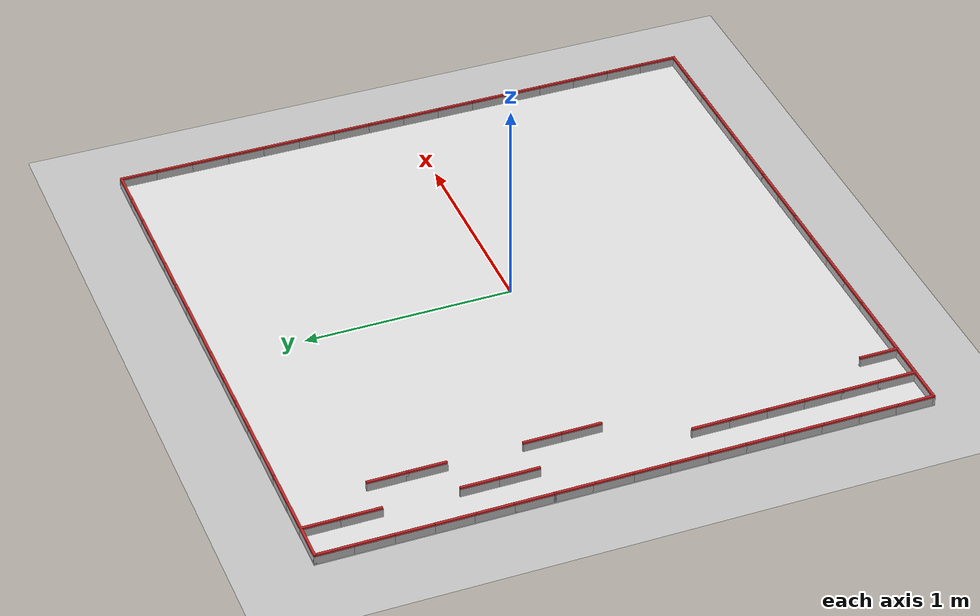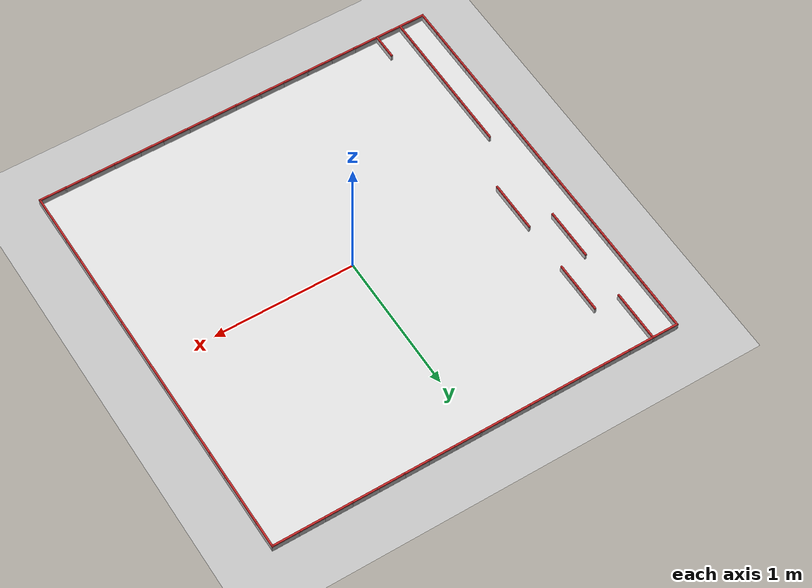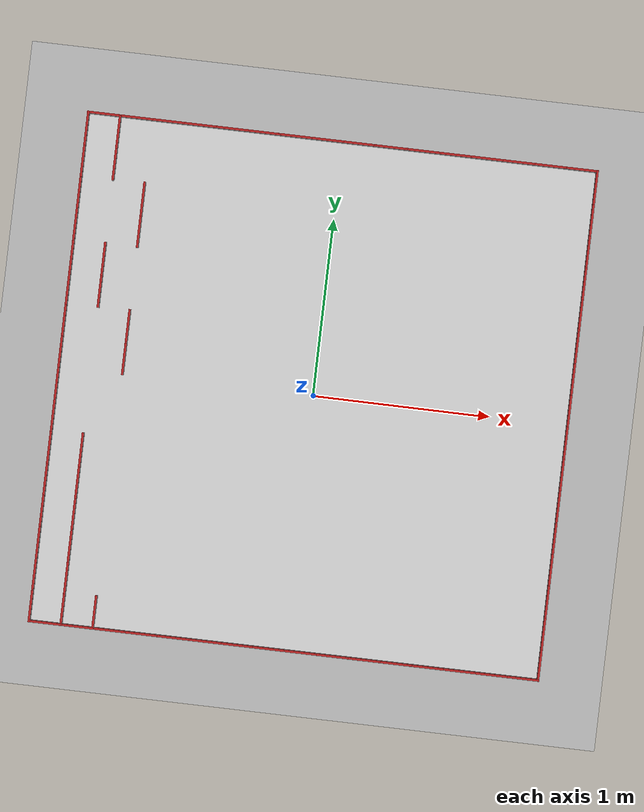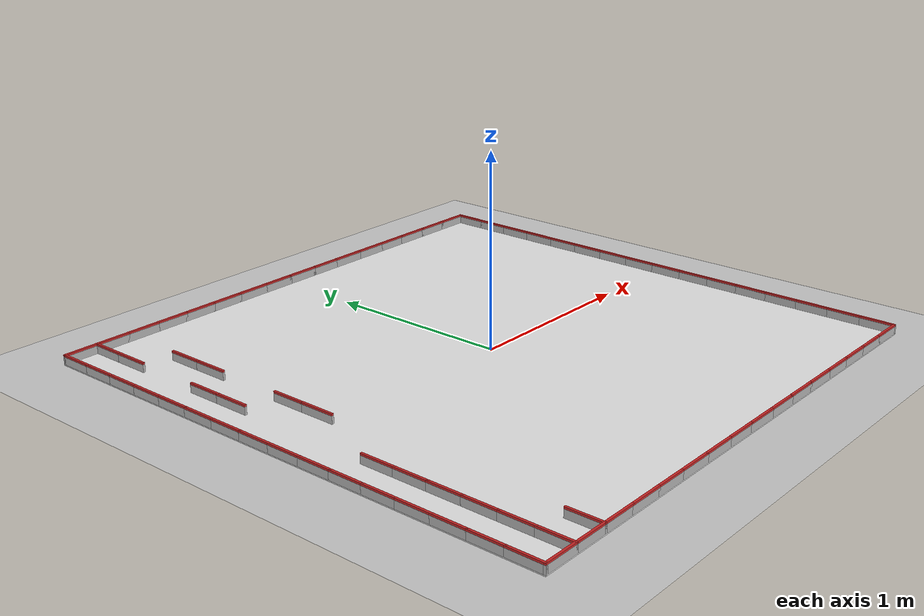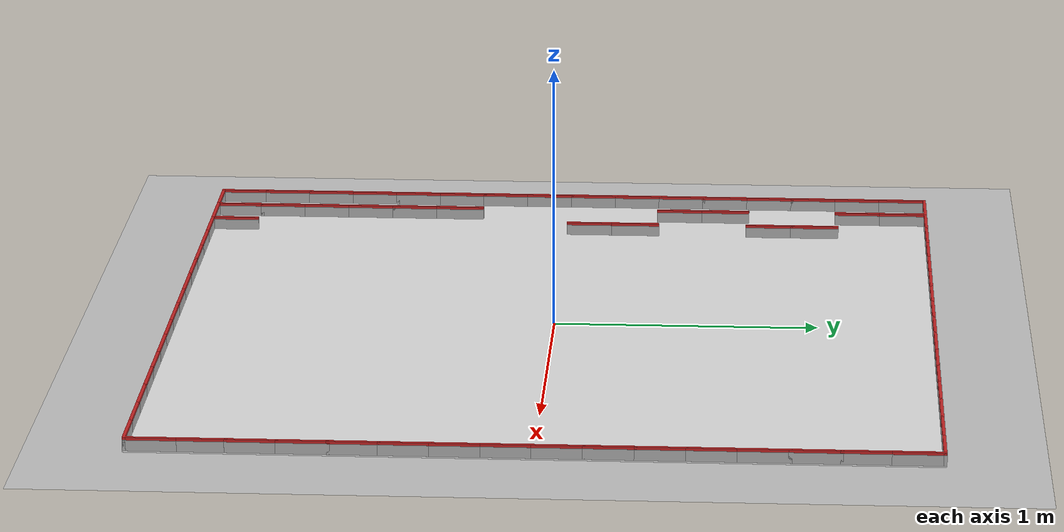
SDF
<sdf version="1.7">
 <world name="default">
  <model name="ground_plane">
   <static>1</static>
   <link name="link">
    <collision name="collision">
     <geometry><plane><normal>0 0 1</normal><size>100 100</size></plane></geometry>
     <surface><friction><ode><mu>100</mu><mu2>50</mu2></ode></friction></surface>
    </collision>
    <visual name="visual">
     <cast_shadows>0</cast_shadows>
     <geometry><plane><normal>0 0 1</normal><size>100 100</size></plane></geometry>
     <material>
      <script><uri>file://media/materials/scripts/gazebo.material</uri><name>Gazebo/Grey</name></script>
     </material>
    </visual>
   </link>
  </model>
  <light name="sun" type="directional">
   <pose>0 0 10 0 -0 0</pose>
   <diffuse>0.8 0.8 0.8 1</diffuse>
   <specular>0.2 0.2 0.2 1</specular>
   <attenuation>
    <range>1000</range>
    <constant>0.9</constant>
    <linear>0.01</linear>
    <quadratic>0.001</quadratic>
   </attenuation>
   <direction>-0.5 0.1 -0.9</direction>
   <spot><inner_angle>0</inner_angle><outer_angle>0</outer_angle><falloff>0</falloff></spot>
  </light>
  <physics type="ode">
   <real_time_update_rate>1000</real_time_update_rate>
   <max_step_size>0.001</max_step_size>
   <real_time_factor>1</real_time_factor>
  </physics>
  <gravity>0 0 -9.8</gravity>
  <magnetic_field>6e-06 2.3e-05 -4.2e-05</magnetic_field>
  <atmosphere type="adiabatic"/>
  <scene><ambient>0.4 0.4 0.4 1</ambient><background>0.7 0.7 0.7 1</background><shadows>1</shadows></scene>
  <spherical_coordinates>
   <surface_model>EARTH_WGS84</surface_model>
   <latitude_deg>0</latitude_deg>
   <longitude_deg>0</longitude_deg>
   <elevation>0</elevation>
   <heading_deg>0</heading_deg>
  </spherical_coordinates>
  <model name="my_maze">
   <link name="base">
    <inertial>
     <mass>1</mass>
     <inertia>
      <ixx>1.39394</ixx>
      <ixy>0</ixy>
      <ixz>0</ixz>
      <iyy>0.696972</iyy>
      <iyz>0</iyz>
      <izz>0.696973</izz>
     </inertia>
     <pose>0 0 0.05 0 -0 0</pose>
    </inertial>
    <visual name="visual">
     <pose>0 0 0.0025 0 -0 0</pose>
     <geometry><box><size>2.892 2.892 0.005</size></box></geometry>
     <material>
      <script><uri>file://media/materials/scripts/gazebo.material</uri><name>Gazebo/White</name></script>
     </material>
    </visual>
    <collision name="collision">
     <pose>0 0 0.0025 0 -0 0</pose>
     <geometry><box><size>2.892 2.892 0.005</size></box></geometry>
     <surface><friction><ode><mu>1000</mu><mu2>1000</mu2></ode></friction></surface>
    </collision>
    <visual name="paint_v_0_0_W">
     <pose>-1.44 1.35 0.05 0 -0 1.5708</pose>
     <geometry><box><size>0.192 0.012 0.01</size></box></geometry>
     <material>
      <script><name>Gazebo/Red</name><uri>file://media/materials/scripts/gazebo.material</uri></script>
     </material>
    </visual>
    <visual name="v_0_0_W">
     <pose>-1.44 1.35 0.025 0 -0 1.5708</pose>
     <geometry><box><size>0.192 0.012 0.04</size></box></geometry>
    </visual>
    <collision name="p_0_0_W">
     <pose>-1.44 1.35 0.03 0 -0 1.5708</pose>
     <geometry><box><size>0.192 0.012 0.05</size></box></geometry>
    </collision>
    <visual name="paint_v_0_1_W">
     <pose>-1.26 1.35 0.05 0 -0 1.5708</pose>
     <geometry><box><size>0.192 0.012 0.01</size></box></geometry>
     <material>
      <script><name>Gazebo/Red</name><uri>file://media/materials/scripts/gazebo.material</uri></script>
     </material>
    </visual>
    <visual name="v_0_1_W">
     <pose>-1.26 1.35 0.025 0 -0 1.5708</pose>
     <geometry><box><size>0.192 0.012 0.04</size></box></geometry>
    </visual>
    <collision name="p_0_1_W">
     <pose>-1.26 1.35 0.03 0 -0 1.5708</pose>
     <geometry><box><size>0.192 0.012 0.05</size></box></geometry>
    </collision>
    <visual name="paint_v_1_0_W">
     <pose>-1.44 1.17 0.05 0 -0 1.5708</pose>
     <geometry><box><size>0.192 0.012 0.01</size></box></geometry>
     <material>
      <script><name>Gazebo/Red</name><uri>file://media/materials/scripts/gazebo.material</uri></script>
     </material>
    </visual>
    <visual name="v_1_0_W">
     <pose>-1.44 1.17 0.025 0 -0 1.5708</pose>
     <geometry><box><size>0.192 0.012 0.04</size></box></geometry>
    </visual>
    <collision name="p_1_0_W">
     <pose>-1.44 1.17 0.03 0 -0 1.5708</pose>
     <geometry><box><size>0.192 0.012 0.05</size></box></geometry>
    </collision>
    <visual name="paint_v_1_1_W">
     <pose>-1.26 1.17 0.05 0 -0 1.5708</pose>
     <geometry><box><size>0.192 0.012 0.01</size></box></geometry>
     <material>
      <script><name>Gazebo/Red</name><uri>file://media/materials/scripts/gazebo.material</uri></script>
     </material>
    </visual>
    <visual name="v_1_1_W">
     <pose>-1.26 1.17 0.025 0 -0 1.5708</pose>
     <geometry><box><size>0.192 0.012 0.04</size></box></geometry>
    </visual>
    <collision name="p_1_1_W">
     <pose>-1.26 1.17 0.03 0 -0 1.5708</pose>
     <geometry><box><size>0.192 0.012 0.05</size></box></geometry>
    </collision>
    <visual name="paint_v_2_0_W">
     <pose>-1.44 0.99 0.05 0 -0 1.5708</pose>
     <geometry><box><size>0.192 0.012 0.01</size></box></geometry>
     <material>
      <script><name>Gazebo/Red</name><uri>file://media/materials/scripts/gazebo.material</uri></script>
     </material>
    </visual>
    <visual name="v_2_0_W">
     <pose>-1.44 0.99 0.025 0 -0 1.5708</pose>
     <geometry><box><size>0.192 0.012 0.04</size></box></geometry>
    </visual>
    <collision name="p_2_0_W">
     <pose>-1.44 0.99 0.03 0 -0 1.5708</pose>
     <geometry><box><size>0.192 0.012 0.05</size></box></geometry>
    </collision>
    <visual name="paint_v_2_2_W">
     <pose>-1.08 0.99 0.05 0 -0 1.5708</pose>
     <geometry><box><size>0.192 0.012 0.01</size></box></geometry>
     <material>
      <script><name>Gazebo/Red</name><uri>file://media/materials/scripts/gazebo.material</uri></script>
     </material>
    </visual>
    <visual name="v_2_2_W">
     <pose>-1.08 0.99 0.025 0 -0 1.5708</pose>
     <geometry><box><size>0.192 0.012 0.04</size></box></geometry>
    </visual>
    <collision name="p_2_2_W">
     <pose>-1.08 0.99 0.03 0 -0 1.5708</pose>
     <geometry><box><size>0.192 0.012 0.05</size></box></geometry>
    </collision>
    <visual name="paint_v_3_0_W">
     <pose>-1.44 0.81 0.05 0 -0 1.5708</pose>
     <geometry><box><size>0.192 0.012 0.01</size></box></geometry>
     <material>
      <script><name>Gazebo/Red</name><uri>file://media/materials/scripts/gazebo.material</uri></script>
     </material>
    </visual>
    <visual name="v_3_0_W">
     <pose>-1.44 0.81 0.025 0 -0 1.5708</pose>
     <geometry><box><size>0.192 0.012 0.04</size></box></geometry>
    </visual>
    <collision name="p_3_0_W">
     <pose>-1.44 0.81 0.03 0 -0 1.5708</pose>
     <geometry><box><size>0.192 0.012 0.05</size></box></geometry>
    </collision>
    <visual name="paint_v_3_2_W">
     <pose>-1.08 0.81 0.05 0 -0 1.5708</pose>
     <geometry><box><size>0.192 0.012 0.01</size></box></geometry>
     <material>
      <script><name>Gazebo/Red</name><uri>file://media/materials/scripts/gazebo.material</uri></script>
     </material>
    </visual>
    <visual name="v_3_2_W">
     <pose>-1.08 0.81 0.025 0 -0 1.5708</pose>
     <geometry><box><size>0.192 0.012 0.04</size></box></geometry>
    </visual>
    <collision name="p_3_2_W">
     <pose>-1.08 0.81 0.03 0 -0 1.5708</pose>
     <geometry><box><size>0.192 0.012 0.05</size></box></geometry>
    </collision>
    <visual name="paint_v_4_0_W">
     <pose>-1.44 0.63 0.05 0 -0 1.5708</pose>
     <geometry><box><size>0.192 0.012 0.01</size></box></geometry>
     <material>
      <script><name>Gazebo/Red</name><uri>file://media/materials/scripts/gazebo.material</uri></script>
     </material>
    </visual>
    <visual name="v_4_0_W">
     <pose>-1.44 0.63 0.025 0 -0 1.5708</pose>
     <geometry><box><size>0.192 0.012 0.04</size></box></geometry>
    </visual>
    <collision name="p_4_0_W">
     <pose>-1.44 0.63 0.03 0 -0 1.5708</pose>
     <geometry><box><size>0.192 0.012 0.05</size></box></geometry>
    </collision>
    <visual name="paint_v_4_1_W">
     <pose>-1.26 0.63 0.05 0 -0 1.5708</pose>
     <geometry><box><size>0.192 0.012 0.01</size></box></geometry>
     <material>
      <script><name>Gazebo/Red</name><uri>file://media/materials/scripts/gazebo.material</uri></script>
     </material>
    </visual>
    <visual name="v_4_1_W">
     <pose>-1.26 0.63 0.025 0 -0 1.5708</pose>
     <geometry><box><size>0.192 0.012 0.04</size></box></geometry>
    </visual>
    <collision name="p_4_1_W">
     <pose>-1.26 0.63 0.03 0 -0 1.5708</pose>
     <geometry><box><size>0.192 0.012 0.05</size></box></geometry>
    </collision>
    <visual name="paint_v_5_0_W">
     <pose>-1.44 0.45 0.05 0 -0 1.5708</pose>
     <geometry><box><size>0.192 0.012 0.01</size></box></geometry>
     <material>
      <script><name>Gazebo/Red</name><uri>file://media/materials/scripts/gazebo.material</uri></script>
     </material>
    </visual>
    <visual name="v_5_0_W">
     <pose>-1.44 0.45 0.025 0 -0 1.5708</pose>
     <geometry><box><size>0.192 0.012 0.04</size></box></geometry>
    </visual>
    <collision name="p_5_0_W">
     <pose>-1.44 0.45 0.03 0 -0 1.5708</pose>
     <geometry><box><size>0.192 0.012 0.05</size></box></geometry>
    </collision>
    <visual name="paint_v_5_1_W">
     <pose>-1.26 0.45 0.05 0 -0 1.5708</pose>
     <geometry><box><size>0.192 0.012 0.01</size></box></geometry>
     <material>
      <script><name>Gazebo/Red</name><uri>file://media/materials/scripts/gazebo.material</uri></script>
     </material>
    </visual>
    <visual name="v_5_1_W">
     <pose>-1.26 0.45 0.025 0 -0 1.5708</pose>
     <geometry><box><size>0.192 0.012 0.04</size></box></geometry>
    </visual>
    <collision name="p_5_1_W">
     <pose>-1.26 0.45 0.03 0 -0 1.5708</pose>
     <geometry><box><size>0.192 0.012 0.05</size></box></geometry>
    </collision>
    <visual name="paint_v_6_0_W">
     <pose>-1.44 0.27 0.05 0 -0 1.5708</pose>
     <geometry><box><size>0.192 0.012 0.01</size></box></geometry>
     <material>
      <script><name>Gazebo/Red</name><uri>file://media/materials/scripts/gazebo.material</uri></script>
     </material>
    </visual>
    <visual name="v_6_0_W">
     <pose>-1.44 0.27 0.025 0 -0 1.5708</pose>
     <geometry><box><size>0.192 0.012 0.04</size></box></geometry>
    </visual>
    <collision name="p_6_0_W">
     <pose>-1.44 0.27 0.03 0 -0 1.5708</pose>
     <geometry><box><size>0.192 0.012 0.05</size></box></geometry>
    </collision>
    <visual name="paint_v_6_2_W">
     <pose>-1.08 0.27 0.05 0 -0 1.5708</pose>
     <geometry><box><size>0.192 0.012 0.01</size></box></geometry>
     <material>
      <script><name>Gazebo/Red</name><uri>file://media/materials/scripts/gazebo.material</uri></script>
     </material>
    </visual>
    <visual name="v_6_2_W">
     <pose>-1.08 0.27 0.025 0 -0 1.5708</pose>
     <geometry><box><size>0.192 0.012 0.04</size></box></geometry>
    </visual>
    <collision name="p_6_2_W">
     <pose>-1.08 0.27 0.03 0 -0 1.5708</pose>
     <geometry><box><size>0.192 0.012 0.05</size></box></geometry>
    </collision>
    <visual name="paint_v_7_0_W">
     <pose>-1.44 0.09 0.05 0 -0 1.5708</pose>
     <geometry><box><size>0.192 0.012 0.01</size></box></geometry>
     <material>
      <script><name>Gazebo/Red</name><uri>file://media/materials/scripts/gazebo.material</uri></script>
     </material>
    </visual>
    <visual name="v_7_0_W">
     <pose>-1.44 0.09 0.025 0 -0 1.5708</pose>
     <geometry><box><size>0.192 0.012 0.04</size></box></geometry>
    </visual>
    <collision name="p_7_0_W">
     <pose>-1.44 0.09 0.03 0 -0 1.5708</pose>
     <geometry><box><size>0.192 0.012 0.05</size></box></geometry>
    </collision>
    <visual name="paint_v_7_2_W">
     <pose>-1.08 0.09 0.05 0 -0 1.5708</pose>
     <geometry><box><size>0.192 0.012 0.01</size></box></geometry>
     <material>
      <script><name>Gazebo/Red</name><uri>file://media/materials/scripts/gazebo.material</uri></script>
     </material>
    </visual>
    <visual name="v_7_2_W">
     <pose>-1.08 0.09 0.025 0 -0 1.5708</pose>
     <geometry><box><size>0.192 0.012 0.04</size></box></geometry>
    </visual>
    <collision name="p_7_2_W">
     <pose>-1.08 0.09 0.03 0 -0 1.5708</pose>
     <geometry><box><size>0.192 0.012 0.05</size></box></geometry>
    </collision>
    <visual name="paint_v_8_0_W">
     <pose>-1.44 -0.09 0.05 0 -0 1.5708</pose>
     <geometry><box><size>0.192 0.012 0.01</size></box></geometry>
     <material>
      <script><name>Gazebo/Red</name><uri>file://media/materials/scripts/gazebo.material</uri></script>
     </material>
    </visual>
    <visual name="v_8_0_W">
     <pose>-1.44 -0.09 0.025 0 -0 1.5708</pose>
     <geometry><box><size>0.192 0.012 0.04</size></box></geometry>
    </visual>
    <collision name="p_8_0_W">
     <pose>-1.44 -0.09 0.03 0 -0 1.5708</pose>
     <geometry><box><size>0.192 0.012 0.05</size></box></geometry>
    </collision>
    <visual name="paint_v_9_0_W">
     <pose>-1.44 -0.27 0.05 0 -0 1.5708</pose>
     <geometry><box><size>0.192 0.012 0.01</size></box></geometry>
     <material>
      <script><name>Gazebo/Red</name><uri>file://media/materials/scripts/gazebo.material</uri></script>
     </material>
    </visual>
    <visual name="v_9_0_W">
     <pose>-1.44 -0.27 0.025 0 -0 1.5708</pose>
     <geometry><box><size>0.192 0.012 0.04</size></box></geometry>
    </visual>
    <collision name="p_9_0_W">
     <pose>-1.44 -0.27 0.03 0 -0 1.5708</pose>
     <geometry><box><size>0.192 0.012 0.05</size></box></geometry>
    </collision>
    <visual name="paint_v_10_0_W">
     <pose>-1.44 -0.45 0.05 0 -0 1.5708</pose>
     <geometry><box><size>0.192 0.012 0.01</size></box></geometry>
     <material>
      <script><name>Gazebo/Red</name><uri>file://media/materials/scripts/gazebo.material</uri></script>
     </material>
    </visual>
    <visual name="v_10_0_W">
     <pose>-1.44 -0.45 0.025 0 -0 1.5708</pose>
     <geometry><box><size>0.192 0.012 0.04</size></box></geometry>
    </visual>
    <collision name="p_10_0_W">
     <pose>-1.44 -0.45 0.03 0 -0 1.5708</pose>
     <geometry><box><size>0.192 0.012 0.05</size></box></geometry>
    </collision>
    <visual name="paint_v_10_1_W">
     <pose>-1.26 -0.45 0.05 0 -0 1.5708</pose>
     <geometry><box><size>0.192 0.012 0.01</size></box></geometry>
     <material>
      <script><name>Gazebo/Red</name><uri>file://media/materials/scripts/gazebo.material</uri></script>
     </material>
    </visual>
    <visual name="v_10_1_W">
     <pose>-1.26 -0.45 0.025 0 -0 1.5708</pose>
     <geometry><box><size>0.192 0.012 0.04</size></box></geometry>
    </visual>
    <collision name="p_10_1_W">
     <pose>-1.26 -0.45 0.03 0 -0 1.5708</pose>
     <geometry><box><size>0.192 0.012 0.05</size></box></geometry>
    </collision>
    <visual name="paint_v_11_0_W">
     <pose>-1.44 -0.63 0.05 0 -0 1.5708</pose>
     <geometry><box><size>0.192 0.012 0.01</size></box></geometry>
     <material>
      <script><name>Gazebo/Red</name><uri>file://media/materials/scripts/gazebo.material</uri></script>
     </material>
    </visual>
    <visual name="v_11_0_W">
     <pose>-1.44 -0.63 0.025 0 -0 1.5708</pose>
     <geometry><box><size>0.192 0.012 0.04</size></box></geometry>
    </visual>
    <collision name="p_11_0_W">
     <pose>-1.44 -0.63 0.03 0 -0 1.5708</pose>
     <geometry><box><size>0.192 0.012 0.05</size></box></geometry>
    </collision>
    <visual name="paint_v_11_1_W">
     <pose>-1.26 -0.63 0.05 0 -0 1.5708</pose>
     <geometry><box><size>0.192 0.012 0.01</size></box></geometry>
     <material>
      <script><name>Gazebo/Red</name><uri>file://media/materials/scripts/gazebo.material</uri></script>
     </material>
    </visual>
    <visual name="v_11_1_W">
     <pose>-1.26 -0.63 0.025 0 -0 1.5708</pose>
     <geometry><box><size>0.192 0.012 0.04</size></box></geometry>
    </visual>
    <collision name="p_11_1_W">
     <pose>-1.26 -0.63 0.03 0 -0 1.5708</pose>
     <geometry><box><size>0.192 0.012 0.05</size></box></geometry>
    </collision>
    <visual name="paint_v_12_0_W">
     <pose>-1.44 -0.81 0.05 0 -0 1.5708</pose>
     <geometry><box><size>0.192 0.012 0.01</size></box></geometry>
     <material>
      <script><name>Gazebo/Red</name><uri>file://media/materials/scripts/gazebo.material</uri></script>
     </material>
    </visual>
    <visual name="v_12_0_W">
     <pose>-1.44 -0.81 0.025 0 -0 1.5708</pose>
     <geometry><box><size>0.192 0.012 0.04</size></box></geometry>
    </visual>
    <collision name="p_12_0_W">
     <pose>-1.44 -0.81 0.03 0 -0 1.5708</pose>
     <geometry><box><size>0.192 0.012 0.05</size></box></geometry>
    </collision>
    <visual name="paint_v_12_1_W">
     <pose>-1.26 -0.81 0.05 0 -0 1.5708</pose>
     <geometry><box><size>0.192 0.012 0.01</size></box></geometry>
     <material>
      <script><name>Gazebo/Red</name><uri>file://media/materials/scripts/gazebo.material</uri></script>
     </material>
    </visual>
    <visual name="v_12_1_W">
     <pose>-1.26 -0.81 0.025 0 -0 1.5708</pose>
     <geometry><box><size>0.192 0.012 0.04</size></box></geometry>
    </visual>
    <collision name="p_12_1_W">
     <pose>-1.26 -0.81 0.03 0 -0 1.5708</pose>
     <geometry><box><size>0.192 0.012 0.05</size></box></geometry>
    </collision>
    <visual name="paint_v_13_0_W">
     <pose>-1.44 -0.99 0.05 0 -0 1.5708</pose>
     <geometry><box><size>0.192 0.012 0.01</size></box></geometry>
     <material>
      <script><name>Gazebo/Red</name><uri>file://media/materials/scripts/gazebo.material</uri></script>
     </material>
    </visual>
    <visual name="v_13_0_W">
     <pose>-1.44 -0.99 0.025 0 -0 1.5708</pose>
     <geometry><box><size>0.192 0.012 0.04</size></box></geometry>
    </visual>
    <collision name="p_13_0_W">
     <pose>-1.44 -0.99 0.03 0 -0 1.5708</pose>
     <geometry><box><size>0.192 0.012 0.05</size></box></geometry>
    </collision>
    <visual name="paint_v_13_1_W">
     <pose>-1.26 -0.99 0.05 0 -0 1.5708</pose>
     <geometry><box><size>0.192 0.012 0.01</size></box></geometry>
     <material>
      <script><name>Gazebo/Red</name><uri>file://media/materials/scripts/gazebo.material</uri></script>
     </material>
    </visual>
    <visual name="v_13_1_W">
     <pose>-1.26 -0.99 0.025 0 -0 1.5708</pose>
     <geometry><box><size>0.192 0.012 0.04</size></box></geometry>
    </visual>
    <collision name="p_13_1_W">
     <pose>-1.26 -0.99 0.03 0 -0 1.5708</pose>
     <geometry><box><size>0.192 0.012 0.05</size></box></geometry>
    </collision>
    <visual name="paint_v_14_0_W">
     <pose>-1.44 -1.17 0.05 0 -0 1.5708</pose>
     <geometry><box><size>0.192 0.012 0.01</size></box></geometry>
     <material>
      <script><name>Gazebo/Red</name><uri>file://media/materials/scripts/gazebo.material</uri></script>
     </material>
    </visual>
    <visual name="v_14_0_W">
     <pose>-1.44 -1.17 0.025 0 -0 1.5708</pose>
     <geometry><box><size>0.192 0.012 0.04</size></box></geometry>
    </visual>
    <collision name="p_14_0_W">
     <pose>-1.44 -1.17 0.03 0 -0 1.5708</pose>
     <geometry><box><size>0.192 0.012 0.05</size></box></geometry>
    </collision>
    <visual name="paint_v_14_1_W">
     <pose>-1.26 -1.17 0.05 0 -0 1.5708</pose>
     <geometry><box><size>0.192 0.012 0.01</size></box></geometry>
     <material>
      <script><name>Gazebo/Red</name><uri>file://media/materials/scripts/gazebo.material</uri></script>
     </material>
    </visual>
    <visual name="v_14_1_W">
     <pose>-1.26 -1.17 0.025 0 -0 1.5708</pose>
     <geometry><box><size>0.192 0.012 0.04</size></box></geometry>
    </visual>
    <collision name="p_14_1_W">
     <pose>-1.26 -1.17 0.03 0 -0 1.5708</pose>
     <geometry><box><size>0.192 0.012 0.05</size></box></geometry>
    </collision>
    <visual name="paint_v_15_0_W">
     <pose>-1.44 -1.35 0.05 0 -0 1.5708</pose>
     <geometry><box><size>0.192 0.012 0.01</size></box></geometry>
     <material>
      <script><name>Gazebo/Red</name><uri>file://media/materials/scripts/gazebo.material</uri></script>
     </material>
    </visual>
    <visual name="v_15_0_W">
     <pose>-1.44 -1.35 0.025 0 -0 1.5708</pose>
     <geometry><box><size>0.192 0.012 0.04</size></box></geometry>
    </visual>
    <collision name="p_15_0_W">
     <pose>-1.44 -1.35 0.03 0 -0 1.5708</pose>
     <geometry><box><size>0.192 0.012 0.05</size></box></geometry>
    </collision>
    <visual name="paint_v_15_0_S">
     <pose>-1.35 -1.44 0.05 0 -0 0</pose>
     <geometry><box><size>0.192 0.012 0.01</size></box></geometry>
     <material>
      <script><name>Gazebo/Red</name><uri>file://media/materials/scripts/gazebo.material</uri></script>
     </material>
    </visual>
    <visual name="v_15_0_S">
     <pose>-1.35 -1.44 0.025 0 -0 0</pose>
     <geometry><box><size>0.192 0.012 0.04</size></box></geometry>
    </visual>
    <collision name="p_15_0_S">
     <pose>-1.35 -1.44 0.03 0 -0 0</pose>
     <geometry><box><size>0.192 0.012 0.05</size></box></geometry>
    </collision>
    <visual name="paint_v_15_1_W">
     <pose>-1.26 -1.35 0.05 0 -0 1.5708</pose>
     <geometry><box><size>0.192 0.012 0.01</size></box></geometry>
     <material>
      <script><name>Gazebo/Red</name><uri>file://media/materials/scripts/gazebo.material</uri></script>
     </material>
    </visual>
    <visual name="v_15_1_W">
     <pose>-1.26 -1.35 0.025 0 -0 1.5708</pose>
     <geometry><box><size>0.192 0.012 0.04</size></box></geometry>
    </visual>
    <collision name="p_15_1_W">
     <pose>-1.26 -1.35 0.03 0 -0 1.5708</pose>
     <geometry><box><size>0.192 0.012 0.05</size></box></geometry>
    </collision>
    <visual name="paint_v_15_1_S">
     <pose>-1.17 -1.44 0.05 0 -0 0</pose>
     <geometry><box><size>0.192 0.012 0.01</size></box></geometry>
     <material>
      <script><name>Gazebo/Red</name><uri>file://media/materials/scripts/gazebo.material</uri></script>
     </material>
    </visual>
    <visual name="v_15_1_S">
     <pose>-1.17 -1.44 0.025 0 -0 0</pose>
     <geometry><box><size>0.192 0.012 0.04</size></box></geometry>
    </visual>
    <collision name="p_15_1_S">
     <pose>-1.17 -1.44 0.03 0 -0 0</pose>
     <geometry><box><size>0.192 0.012 0.05</size></box></geometry>
    </collision>
    <visual name="paint_v_15_2_W">
     <pose>-1.08 -1.35 0.05 0 -0 1.5708</pose>
     <geometry><box><size>0.192 0.012 0.01</size></box></geometry>
     <material>
      <script><name>Gazebo/Red</name><uri>file://media/materials/scripts/gazebo.material</uri></script>
     </material>
    </visual>
    <visual name="v_15_2_W">
     <pose>-1.08 -1.35 0.025 0 -0 1.5708</pose>
     <geometry><box><size>0.192 0.012 0.04</size></box></geometry>
    </visual>
    <collision name="p_15_2_W">
     <pose>-1.08 -1.35 0.03 0 -0 1.5708</pose>
     <geometry><box><size>0.192 0.012 0.05</size></box></geometry>
    </collision>
    <visual name="paint_v_15_2_S">
     <pose>-0.99 -1.44 0.05 0 -0 0</pose>
     <geometry><box><size>0.192 0.012 0.01</size></box></geometry>
     <material>
      <script><name>Gazebo/Red</name><uri>file://media/materials/scripts/gazebo.material</uri></script>
     </material>
    </visual>
    <visual name="v_15_2_S">
     <pose>-0.99 -1.44 0.025 0 -0 0</pose>
     <geometry><box><size>0.192 0.012 0.04</size></box></geometry>
    </visual>
    <collision name="p_15_2_S">
     <pose>-0.99 -1.44 0.03 0 -0 0</pose>
     <geometry><box><size>0.192 0.012 0.05</size></box></geometry>
    </collision>
    <visual name="paint_v_15_3_S">
     <pose>-0.81 -1.44 0.05 0 -0 0</pose>
     <geometry><box><size>0.192 0.012 0.01</size></box></geometry>
     <material>
      <script><name>Gazebo/Red</name><uri>file://media/materials/scripts/gazebo.material</uri></script>
     </material>
    </visual>
    <visual name="v_15_3_S">
     <pose>-0.81 -1.44 0.025 0 -0 0</pose>
     <geometry><box><size>0.192 0.012 0.04</size></box></geometry>
    </visual>
    <collision name="p_15_3_S">
     <pose>-0.81 -1.44 0.03 0 -0 0</pose>
     <geometry><box><size>0.192 0.012 0.05</size></box></geometry>
    </collision>
    <visual name="paint_v_15_4_S">
     <pose>-0.63 -1.44 0.05 0 -0 0</pose>
     <geometry><box><size>0.192 0.012 0.01</size></box></geometry>
     <material>
      <script><name>Gazebo/Red</name><uri>file://media/materials/scripts/gazebo.material</uri></script>
     </material>
    </visual>
    <visual name="v_15_4_S">
     <pose>-0.63 -1.44 0.025 0 -0 0</pose>
     <geometry><box><size>0.192 0.012 0.04</size></box></geometry>
    </visual>
    <collision name="p_15_4_S">
     <pose>-0.63 -1.44 0.03 0 -0 0</pose>
     <geometry><box><size>0.192 0.012 0.05</size></box></geometry>
    </collision>
    <visual name="paint_v_15_5_S">
     <pose>-0.45 -1.44 0.05 0 -0 0</pose>
     <geometry><box><size>0.192 0.012 0.01</size></box></geometry>
     <material>
      <script><name>Gazebo/Red</name><uri>file://media/materials/scripts/gazebo.material</uri></script>
     </material>
    </visual>
    <visual name="v_15_5_S">
     <pose>-0.45 -1.44 0.025 0 -0 0</pose>
     <geometry><box><size>0.192 0.012 0.04</size></box></geometry>
    </visual>
    <collision name="p_15_5_S">
     <pose>-0.45 -1.44 0.03 0 -0 0</pose>
     <geometry><box><size>0.192 0.012 0.05</size></box></geometry>
    </collision>
    <visual name="paint_v_15_6_S">
     <pose>-0.27 -1.44 0.05 0 -0 0</pose>
     <geometry><box><size>0.192 0.012 0.01</size></box></geometry>
     <material>
      <script><name>Gazebo/Red</name><uri>file://media/materials/scripts/gazebo.material</uri></script>
     </material>
    </visual>
    <visual name="v_15_6_S">
     <pose>-0.27 -1.44 0.025 0 -0 0</pose>
     <geometry><box><size>0.192 0.012 0.04</size></box></geometry>
    </visual>
    <collision name="p_15_6_S">
     <pose>-0.27 -1.44 0.03 0 -0 0</pose>
     <geometry><box><size>0.192 0.012 0.05</size></box></geometry>
    </collision>
    <visual name="paint_v_15_7_S">
     <pose>-0.09 -1.44 0.05 0 -0 0</pose>
     <geometry><box><size>0.192 0.012 0.01</size></box></geometry>
     <material>
      <script><name>Gazebo/Red</name><uri>file://media/materials/scripts/gazebo.material</uri></script>
     </material>
    </visual>
    <visual name="v_15_7_S">
     <pose>-0.09 -1.44 0.025 0 -0 0</pose>
     <geometry><box><size>0.192 0.012 0.04</size></box></geometry>
    </visual>
    <collision name="p_15_7_S">
     <pose>-0.09 -1.44 0.03 0 -0 0</pose>
     <geometry><box><size>0.192 0.012 0.05</size></box></geometry>
    </collision>
    <visual name="paint_v_15_8_S">
     <pose>0.09 -1.44 0.05 0 -0 0</pose>
     <geometry><box><size>0.192 0.012 0.01</size></box></geometry>
     <material>
      <script><name>Gazebo/Red</name><uri>file://media/materials/scripts/gazebo.material</uri></script>
     </material>
    </visual>
    <visual name="v_15_8_S">
     <pose>0.09 -1.44 0.025 0 -0 0</pose>
     <geometry><box><size>0.192 0.012 0.04</size></box></geometry>
    </visual>
    <collision name="p_15_8_S">
     <pose>0.09 -1.44 0.03 0 -0 0</pose>
     <geometry><box><size>0.192 0.012 0.05</size></box></geometry>
    </collision>
    <visual name="paint_v_15_9_S">
     <pose>0.27 -1.44 0.05 0 -0 0</pose>
     <geometry><box><size>0.192 0.012 0.01</size></box></geometry>
     <material>
      <script><name>Gazebo/Red</name><uri>file://media/materials/scripts/gazebo.material</uri></script>
     </material>
    </visual>
    <visual name="v_15_9_S">
     <pose>0.27 -1.44 0.025 0 -0 0</pose>
     <geometry><box><size>0.192 0.012 0.04</size></box></geometry>
    </visual>
    <collision name="p_15_9_S">
     <pose>0.27 -1.44 0.03 0 -0 0</pose>
     <geometry><box><size>0.192 0.012 0.05</size></box></geometry>
    </collision>
    <visual name="paint_v_15_10_S">
     <pose>0.45 -1.44 0.05 0 -0 0</pose>
     <geometry><box><size>0.192 0.012 0.01</size></box></geometry>
     <material>
      <script><name>Gazebo/Red</name><uri>file://media/materials/scripts/gazebo.material</uri></script>
     </material>
    </visual>
    <visual name="v_15_10_S">
     <pose>0.45 -1.44 0.025 0 -0 0</pose>
     <geometry><box><size>0.192 0.012 0.04</size></box></geometry>
    </visual>
    <collision name="p_15_10_S">
     <pose>0.45 -1.44 0.03 0 -0 0</pose>
     <geometry><box><size>0.192 0.012 0.05</size></box></geometry>
    </collision>
    <visual name="paint_v_15_11_S">
     <pose>0.63 -1.44 0.05 0 -0 0</pose>
     <geometry><box><size>0.192 0.012 0.01</size></box></geometry>
     <material>
      <script><name>Gazebo/Red</name><uri>file://media/materials/scripts/gazebo.material</uri></script>
     </material>
    </visual>
    <visual name="v_15_11_S">
     <pose>0.63 -1.44 0.025 0 -0 0</pose>
     <geometry><box><size>0.192 0.012 0.04</size></box></geometry>
    </visual>
    <collision name="p_15_11_S">
     <pose>0.63 -1.44 0.03 0 -0 0</pose>
     <geometry><box><size>0.192 0.012 0.05</size></box></geometry>
    </collision>
    <visual name="paint_v_15_12_S">
     <pose>0.81 -1.44 0.05 0 -0 0</pose>
     <geometry><box><size>0.192 0.012 0.01</size></box></geometry>
     <material>
      <script><name>Gazebo/Red</name><uri>file://media/materials/scripts/gazebo.material</uri></script>
     </material>
    </visual>
    <visual name="v_15_12_S">
     <pose>0.81 -1.44 0.025 0 -0 0</pose>
     <geometry><box><size>0.192 0.012 0.04</size></box></geometry>
    </visual>
    <collision name="p_15_12_S">
     <pose>0.81 -1.44 0.03 0 -0 0</pose>
     <geometry><box><size>0.192 0.012 0.05</size></box></geometry>
    </collision>
    <visual name="paint_v_15_13_S">
     <pose>0.99 -1.44 0.05 0 -0 0</pose>
     <geometry><box><size>0.192 0.012 0.01</size></box></geometry>
     <material>
      <script><name>Gazebo/Red</name><uri>file://media/materials/scripts/gazebo.material</uri></script>
     </material>
    </visual>
    <visual name="v_15_13_S">
     <pose>0.99 -1.44 0.025 0 -0 0</pose>
     <geometry><box><size>0.192 0.012 0.04</size></box></geometry>
    </visual>
    <collision name="p_15_13_S">
     <pose>0.99 -1.44 0.03 0 -0 0</pose>
     <geometry><box><size>0.192 0.012 0.05</size></box></geometry>
    </collision>
    <visual name="paint_v_15_14_S">
     <pose>1.17 -1.44 0.05 0 -0 0</pose>
     <geometry><box><size>0.192 0.012 0.01</size></box></geometry>
     <material>
      <script><name>Gazebo/Red</name><uri>file://media/materials/scripts/gazebo.material</uri></script>
     </material>
    </visual>
    <visual name="v_15_14_S">
     <pose>1.17 -1.44 0.025 0 -0 0</pose>
     <geometry><box><size>0.192 0.012 0.04</size></box></geometry>
    </visual>
    <collision name="p_15_14_S">
     <pose>1.17 -1.44 0.03 0 -0 0</pose>
     <geometry><box><size>0.192 0.012 0.05</size></box></geometry>
    </collision>
    <visual name="paint_v_15_15_S">
     <pose>1.35 -1.44 0.05 0 -0 0</pose>
     <geometry><box><size>0.192 0.012 0.01</size></box></geometry>
     <material>
      <script><name>Gazebo/Red</name><uri>file://media/materials/scripts/gazebo.material</uri></script>
     </material>
    </visual>
    <visual name="v_15_15_S">
     <pose>1.35 -1.44 0.025 0 -0 0</pose>
     <geometry><box><size>0.192 0.012 0.04</size></box></geometry>
    </visual>
    <collision name="p_15_15_S">
     <pose>1.35 -1.44 0.03 0 -0 0</pose>
     <geometry><box><size>0.192 0.012 0.05</size></box></geometry>
    </collision>
    <visual name="paint_v_0_15_E">
     <pose>1.44 1.35 0.05 0 -0 1.5708</pose>
     <geometry><box><size>0.192 0.012 0.01</size></box></geometry>
     <material>
      <script><name>Gazebo/Red</name><uri>file://media/materials/scripts/gazebo.material</uri></script>
     </material>
    </visual>
    <visual name="v_0_15_E">
     <pose>1.44 1.35 0.025 0 -0 1.5708</pose>
     <geometry><box><size>0.192 0.012 0.04</size></box></geometry>
    </visual>
    <collision name="p_0_15_E">
     <pose>1.44 1.35 0.03 0 -0 1.5708</pose>
     <geometry><box><size>0.192 0.012 0.05</size></box></geometry>
    </collision>
    <visual name="paint_v_0_0_N">
     <pose>-1.35 1.44 0.05 0 -0 0</pose>
     <geometry><box><size>0.192 0.012 0.01</size></box></geometry>
     <material>
      <script><name>Gazebo/Red</name><uri>file://media/materials/scripts/gazebo.material</uri></script>
     </material>
    </visual>
    <visual name="v_0_0_N">
     <pose>-1.35 1.44 0.025 0 -0 0</pose>
     <geometry><box><size>0.192 0.012 0.04</size></box></geometry>
    </visual>
    <collision name="p_0_0_N">
     <pose>-1.35 1.44 0.03 0 -0 0</pose>
     <geometry><box><size>0.192 0.012 0.05</size></box></geometry>
    </collision>
    <visual name="paint_v_1_15_E">
     <pose>1.44 1.17 0.05 0 -0 1.5708</pose>
     <geometry><box><size>0.192 0.012 0.01</size></box></geometry>
     <material>
      <script><name>Gazebo/Red</name><uri>file://media/materials/scripts/gazebo.material</uri></script>
     </material>
    </visual>
    <visual name="v_1_15_E">
     <pose>1.44 1.17 0.025 0 -0 1.5708</pose>
     <geometry><box><size>0.192 0.012 0.04</size></box></geometry>
    </visual>
    <collision name="p_1_15_E">
     <pose>1.44 1.17 0.03 0 -0 1.5708</pose>
     <geometry><box><size>0.192 0.012 0.05</size></box></geometry>
    </collision>
    <visual name="paint_v_0_1_N">
     <pose>-1.17 1.44 0.05 0 -0 0</pose>
     <geometry><box><size>0.192 0.012 0.01</size></box></geometry>
     <material>
      <script><name>Gazebo/Red</name><uri>file://media/materials/scripts/gazebo.material</uri></script>
     </material>
    </visual>
    <visual name="v_0_1_N">
     <pose>-1.17 1.44 0.025 0 -0 0</pose>
     <geometry><box><size>0.192 0.012 0.04</size></box></geometry>
    </visual>
    <collision name="p_0_1_N">
     <pose>-1.17 1.44 0.03 0 -0 0</pose>
     <geometry><box><size>0.192 0.012 0.05</size></box></geometry>
    </collision>
    <visual name="paint_v_2_15_E">
     <pose>1.44 0.99 0.05 0 -0 1.5708</pose>
     <geometry><box><size>0.192 0.012 0.01</size></box></geometry>
     <material>
      <script><name>Gazebo/Red</name><uri>file://media/materials/scripts/gazebo.material</uri></script>
     </material>
    </visual>
    <visual name="v_2_15_E">
     <pose>1.44 0.99 0.025 0 -0 1.5708</pose>
     <geometry><box><size>0.192 0.012 0.04</size></box></geometry>
    </visual>
    <collision name="p_2_15_E">
     <pose>1.44 0.99 0.03 0 -0 1.5708</pose>
     <geometry><box><size>0.192 0.012 0.05</size></box></geometry>
    </collision>
    <visual name="paint_v_0_2_N">
     <pose>-0.99 1.44 0.05 0 -0 0</pose>
     <geometry><box><size>0.192 0.012 0.01</size></box></geometry>
     <material>
      <script><name>Gazebo/Red</name><uri>file://media/materials/scripts/gazebo.material</uri></script>
     </material>
    </visual>
    <visual name="v_0_2_N">
     <pose>-0.99 1.44 0.025 0 -0 0</pose>
     <geometry><box><size>0.192 0.012 0.04</size></box></geometry>
    </visual>
    <collision name="p_0_2_N">
     <pose>-0.99 1.44 0.03 0 -0 0</pose>
     <geometry><box><size>0.192 0.012 0.05</size></box></geometry>
    </collision>
    <visual name="paint_v_3_15_E">
     <pose>1.44 0.81 0.05 0 -0 1.5708</pose>
     <geometry><box><size>0.192 0.012 0.01</size></box></geometry>
     <material>
      <script><name>Gazebo/Red</name><uri>file://media/materials/scripts/gazebo.material</uri></script>
     </material>
    </visual>
    <visual name="v_3_15_E">
     <pose>1.44 0.81 0.025 0 -0 1.5708</pose>
     <geometry><box><size>0.192 0.012 0.04</size></box></geometry>
    </visual>
    <collision name="p_3_15_E">
     <pose>1.44 0.81 0.03 0 -0 1.5708</pose>
     <geometry><box><size>0.192 0.012 0.05</size></box></geometry>
    </collision>
    <visual name="paint_v_0_3_N">
     <pose>-0.81 1.44 0.05 0 -0 0</pose>
     <geometry><box><size>0.192 0.012 0.01</size></box></geometry>
     <material>
      <script><name>Gazebo/Red</name><uri>file://media/materials/scripts/gazebo.material</uri></script>
     </material>
    </visual>
    <visual name="v_0_3_N">
     <pose>-0.81 1.44 0.025 0 -0 0</pose>
     <geometry><box><size>0.192 0.012 0.04</size></box></geometry>
    </visual>
    <collision name="p_0_3_N">
     <pose>-0.81 1.44 0.03 0 -0 0</pose>
     <geometry><box><size>0.192 0.012 0.05</size></box></geometry>
    </collision>
    <visual name="paint_v_4_15_E">
     <pose>1.44 0.63 0.05 0 -0 1.5708</pose>
     <geometry><box><size>0.192 0.012 0.01</size></box></geometry>
     <material>
      <script><name>Gazebo/Red</name><uri>file://media/materials/scripts/gazebo.material</uri></script>
     </material>
    </visual>
    <visual name="v_4_15_E">
     <pose>1.44 0.63 0.025 0 -0 1.5708</pose>
     <geometry><box><size>0.192 0.012 0.04</size></box></geometry>
    </visual>
    <collision name="p_4_15_E">
     <pose>1.44 0.63 0.03 0 -0 1.5708</pose>
     <geometry><box><size>0.192 0.012 0.05</size></box></geometry>
    </collision>
    <visual name="paint_v_0_4_N">
     <pose>-0.63 1.44 0.05 0 -0 0</pose>
     <geometry><box><size>0.192 0.012 0.01</size></box></geometry>
     <material>
      <script><name>Gazebo/Red</name><uri>file://media/materials/scripts/gazebo.material</uri></script>
     </material>
    </visual>
    <visual name="v_0_4_N">
     <pose>-0.63 1.44 0.025 0 -0 0</pose>
     <geometry><box><size>0.192 0.012 0.04</size></box></geometry>
    </visual>
    <collision name="p_0_4_N">
     <pose>-0.63 1.44 0.03 0 -0 0</pose>
     <geometry><box><size>0.192 0.012 0.05</size></box></geometry>
    </collision>
    <visual name="paint_v_5_15_E">
     <pose>1.44 0.45 0.05 0 -0 1.5708</pose>
     <geometry><box><size>0.192 0.012 0.01</size></box></geometry>
     <material>
      <script><name>Gazebo/Red</name><uri>file://media/materials/scripts/gazebo.material</uri></script>
     </material>
    </visual>
    <visual name="v_5_15_E">
     <pose>1.44 0.45 0.025 0 -0 1.5708</pose>
     <geometry><box><size>0.192 0.012 0.04</size></box></geometry>
    </visual>
    <collision name="p_5_15_E">
     <pose>1.44 0.45 0.03 0 -0 1.5708</pose>
     <geometry><box><size>0.192 0.012 0.05</size></box></geometry>
    </collision>
    <visual name="paint_v_0_5_N">
     <pose>-0.45 1.44 0.05 0 -0 0</pose>
     <geometry><box><size>0.192 0.012 0.01</size></box></geometry>
     <material>
      <script><name>Gazebo/Red</name><uri>file://media/materials/scripts/gazebo.material</uri></script>
     </material>
    </visual>
    <visual name="v_0_5_N">
     <pose>-0.45 1.44 0.025 0 -0 0</pose>
     <geometry><box><size>0.192 0.012 0.04</size></box></geometry>
    </visual>
    <collision name="p_0_5_N">
     <pose>-0.45 1.44 0.03 0 -0 0</pose>
     <geometry><box><size>0.192 0.012 0.05</size></box></geometry>
    </collision>
    <visual name="paint_v_6_15_E">
     <pose>1.44 0.27 0.05 0 -0 1.5708</pose>
     <geometry><box><size>0.192 0.012 0.01</size></box></geometry>
     <material>
      <script><name>Gazebo/Red</name><uri>file://media/materials/scripts/gazebo.material</uri></script>
     </material>
    </visual>
    <visual name="v_6_15_E">
     <pose>1.44 0.27 0.025 0 -0 1.5708</pose>
     <geometry><box><size>0.192 0.012 0.04</size></box></geometry>
    </visual>
    <collision name="p_6_15_E">
     <pose>1.44 0.27 0.03 0 -0 1.5708</pose>
     <geometry><box><size>0.192 0.012 0.05</size></box></geometry>
    </collision>
    <visual name="paint_v_0_6_N">
     <pose>-0.27 1.44 0.05 0 -0 0</pose>
     <geometry><box><size>0.192 0.012 0.01</size></box></geometry>
     <material>
      <script><name>Gazebo/Red</name><uri>file://media/materials/scripts/gazebo.material</uri></script>
     </material>
    </visual>
    <visual name="v_0_6_N">
     <pose>-0.27 1.44 0.025 0 -0 0</pose>
     <geometry><box><size>0.192 0.012 0.04</size></box></geometry>
    </visual>
    <collision name="p_0_6_N">
     <pose>-0.27 1.44 0.03 0 -0 0</pose>
     <geometry><box><size>0.192 0.012 0.05</size></box></geometry>
    </collision>
    <visual name="paint_v_7_15_E">
     <pose>1.44 0.09 0.05 0 -0 1.5708</pose>
     <geometry><box><size>0.192 0.012 0.01</size></box></geometry>
     <material>
      <script><name>Gazebo/Red</name><uri>file://media/materials/scripts/gazebo.material</uri></script>
     </material>
    </visual>
    <visual name="v_7_15_E">
     <pose>1.44 0.09 0.025 0 -0 1.5708</pose>
     <geometry><box><size>0.192 0.012 0.04</size></box></geometry>
    </visual>
    <collision name="p_7_15_E">
     <pose>1.44 0.09 0.03 0 -0 1.5708</pose>
     <geometry><box><size>0.192 0.012 0.05</size></box></geometry>
    </collision>
    <visual name="paint_v_0_7_N">
     <pose>-0.09 1.44 0.05 0 -0 0</pose>
     <geometry><box><size>0.192 0.012 0.01</size></box></geometry>
     <material>
      <script><name>Gazebo/Red</name><uri>file://media/materials/scripts/gazebo.material</uri></script>
     </material>
    </visual>
    <visual name="v_0_7_N">
     <pose>-0.09 1.44 0.025 0 -0 0</pose>
     <geometry><box><size>0.192 0.012 0.04</size></box></geometry>
    </visual>
    <collision name="p_0_7_N">
     <pose>-0.09 1.44 0.03 0 -0 0</pose>
     <geometry><box><size>0.192 0.012 0.05</size></box></geometry>
    </collision>
    <visual name="paint_v_8_15_E">
     <pose>1.44 -0.09 0.05 0 -0 1.5708</pose>
     <geometry><box><size>0.192 0.012 0.01</size></box></geometry>
     <material>
      <script><name>Gazebo/Red</name><uri>file://media/materials/scripts/gazebo.material</uri></script>
     </material>
    </visual>
    <visual name="v_8_15_E">
     <pose>1.44 -0.09 0.025 0 -0 1.5708</pose>
     <geometry><box><size>0.192 0.012 0.04</size></box></geometry>
    </visual>
    <collision name="p_8_15_E">
     <pose>1.44 -0.09 0.03 0 -0 1.5708</pose>
     <geometry><box><size>0.192 0.012 0.05</size></box></geometry>
    </collision>
    <visual name="paint_v_0_8_N">
     <pose>0.09 1.44 0.05 0 -0 0</pose>
     <geometry><box><size>0.192 0.012 0.01</size></box></geometry>
     <material>
      <script><name>Gazebo/Red</name><uri>file://media/materials/scripts/gazebo.material</uri></script>
     </material>
    </visual>
    <visual name="v_0_8_N">
     <pose>0.09 1.44 0.025 0 -0 0</pose>
     <geometry><box><size>0.192 0.012 0.04</size></box></geometry>
    </visual>
    <collision name="p_0_8_N">
     <pose>0.09 1.44 0.03 0 -0 0</pose>
     <geometry><box><size>0.192 0.012 0.05</size></box></geometry>
    </collision>
    <visual name="paint_v_9_15_E">
     <pose>1.44 -0.27 0.05 0 -0 1.5708</pose>
     <geometry><box><size>0.192 0.012 0.01</size></box></geometry>
     <material>
      <script><name>Gazebo/Red</name><uri>file://media/materials/scripts/gazebo.material</uri></script>
     </material>
    </visual>
    <visual name="v_9_15_E">
     <pose>1.44 -0.27 0.025 0 -0 1.5708</pose>
     <geometry><box><size>0.192 0.012 0.04</size></box></geometry>
    </visual>
    <collision name="p_9_15_E">
     <pose>1.44 -0.27 0.03 0 -0 1.5708</pose>
     <geometry><box><size>0.192 0.012 0.05</size></box></geometry>
    </collision>
    <visual name="paint_v_0_9_N">
     <pose>0.27 1.44 0.05 0 -0 0</pose>
     <geometry><box><size>0.192 0.012 0.01</size></box></geometry>
     <material>
      <script><name>Gazebo/Red</name><uri>file://media/materials/scripts/gazebo.material</uri></script>
     </material>
    </visual>
    <visual name="v_0_9_N">
     <pose>0.27 1.44 0.025 0 -0 0</pose>
     <geometry><box><size>0.192 0.012 0.04</size></box></geometry>
    </visual>
    <collision name="p_0_9_N">
     <pose>0.27 1.44 0.03 0 -0 0</pose>
     <geometry><box><size>0.192 0.012 0.05</size></box></geometry>
    </collision>
    <visual name="paint_v_10_15_E">
     <pose>1.44 -0.45 0.05 0 -0 1.5708</pose>
     <geometry><box><size>0.192 0.012 0.01</size></box></geometry>
     <material>
      <script><name>Gazebo/Red</name><uri>file://media/materials/scripts/gazebo.material</uri></script>
     </material>
    </visual>
    <visual name="v_10_15_E">
     <pose>1.44 -0.45 0.025 0 -0 1.5708</pose>
     <geometry><box><size>0.192 0.012 0.04</size></box></geometry>
    </visual>
    <collision name="p_10_15_E">
     <pose>1.44 -0.45 0.03 0 -0 1.5708</pose>
     <geometry><box><size>0.192 0.012 0.05</size></box></geometry>
    </collision>
    <visual name="paint_v_0_10_N">
     <pose>0.45 1.44 0.05 0 -0 0</pose>
     <geometry><box><size>0.192 0.012 0.01</size></box></geometry>
     <material>
      <script><name>Gazebo/Red</name><uri>file://media/materials/scripts/gazebo.material</uri></script>
     </material>
    </visual>
    <visual name="v_0_10_N">
     <pose>0.45 1.44 0.025 0 -0 0</pose>
     <geometry><box><size>0.192 0.012 0.04</size></box></geometry>
    </visual>
    <collision name="p_0_10_N">
     <pose>0.45 1.44 0.03 0 -0 0</pose>
     <geometry><box><size>0.192 0.012 0.05</size></box></geometry>
    </collision>
    <visual name="paint_v_11_15_E">
     <pose>1.44 -0.63 0.05 0 -0 1.5708</pose>
     <geometry><box><size>0.192 0.012 0.01</size></box></geometry>
     <material>
      <script><name>Gazebo/Red</name><uri>file://media/materials/scripts/gazebo.material</uri></script>
     </material>
    </visual>
    <visual name="v_11_15_E">
     <pose>1.44 -0.63 0.025 0 -0 1.5708</pose>
     <geometry><box><size>0.192 0.012 0.04</size></box></geometry>
    </visual>
    <collision name="p_11_15_E">
     <pose>1.44 -0.63 0.03 0 -0 1.5708</pose>
     <geometry><box><size>0.192 0.012 0.05</size></box></geometry>
    </collision>
    <visual name="paint_v_0_11_N">
     <pose>0.63 1.44 0.05 0 -0 0</pose>
     <geometry><box><size>0.192 0.012 0.01</size></box></geometry>
     <material>
      <script><name>Gazebo/Red</name><uri>file://media/materials/scripts/gazebo.material</uri></script>
     </material>
    </visual>
    <visual name="v_0_11_N">
     <pose>0.63 1.44 0.025 0 -0 0</pose>
     <geometry><box><size>0.192 0.012 0.04</size></box></geometry>
    </visual>
    <collision name="p_0_11_N">
     <pose>0.63 1.44 0.03 0 -0 0</pose>
     <geometry><box><size>0.192 0.012 0.05</size></box></geometry>
    </collision>
    <visual name="paint_v_12_15_E">
     <pose>1.44 -0.81 0.05 0 -0 1.5708</pose>
     <geometry><box><size>0.192 0.012 0.01</size></box></geometry>
     <material>
      <script><name>Gazebo/Red</name><uri>file://media/materials/scripts/gazebo.material</uri></script>
     </material>
    </visual>
    <visual name="v_12_15_E">
     <pose>1.44 -0.81 0.025 0 -0 1.5708</pose>
     <geometry><box><size>0.192 0.012 0.04</size></box></geometry>
    </visual>
    <collision name="p_12_15_E">
     <pose>1.44 -0.81 0.03 0 -0 1.5708</pose>
     <geometry><box><size>0.192 0.012 0.05</size></box></geometry>
    </collision>
    <visual name="paint_v_0_12_N">
     <pose>0.81 1.44 0.05 0 -0 0</pose>
     <geometry><box><size>0.192 0.012 0.01</size></box></geometry>
     <material>
      <script><name>Gazebo/Red</name><uri>file://media/materials/scripts/gazebo.material</uri></script>
     </material>
    </visual>
    <visual name="v_0_12_N">
     <pose>0.81 1.44 0.025 0 -0 0</pose>
     <geometry><box><size>0.192 0.012 0.04</size></box></geometry>
    </visual>
    <collision name="p_0_12_N">
     <pose>0.81 1.44 0.03 0 -0 0</pose>
     <geometry><box><size>0.192 0.012 0.05</size></box></geometry>
    </collision>
    <visual name="paint_v_13_15_E">
     <pose>1.44 -0.99 0.05 0 -0 1.5708</pose>
     <geometry><box><size>0.192 0.012 0.01</size></box></geometry>
     <material>
      <script><name>Gazebo/Red</name><uri>file://media/materials/scripts/gazebo.material</uri></script>
     </material>
    </visual>
    <visual name="v_13_15_E">
     <pose>1.44 -0.99 0.025 0 -0 1.5708</pose>
     <geometry><box><size>0.192 0.012 0.04</size></box></geometry>
    </visual>
    <collision name="p_13_15_E">
     <pose>1.44 -0.99 0.03 0 -0 1.5708</pose>
     <geometry><box><size>0.192 0.012 0.05</size></box></geometry>
    </collision>
    <visual name="paint_v_0_13_N">
     <pose>0.99 1.44 0.05 0 -0 0</pose>
     <geometry><box><size>0.192 0.012 0.01</size></box></geometry>
     <material>
      <script><name>Gazebo/Red</name><uri>file://media/materials/scripts/gazebo.material</uri></script>
     </material>
    </visual>
    <visual name="v_0_13_N">
     <pose>0.99 1.44 0.025 0 -0 0</pose>
     <geometry><box><size>0.192 0.012 0.04</size></box></geometry>
    </visual>
    <collision name="p_0_13_N">
     <pose>0.99 1.44 0.03 0 -0 0</pose>
     <geometry><box><size>0.192 0.012 0.05</size></box></geometry>
    </collision>
    <visual name="paint_v_14_15_E">
     <pose>1.44 -1.17 0.05 0 -0 1.5708</pose>
     <geometry><box><size>0.192 0.012 0.01</size></box></geometry>
     <material>
      <script><name>Gazebo/Red</name><uri>file://media/materials/scripts/gazebo.material</uri></script>
     </material>
    </visual>
    <visual name="v_14_15_E">
     <pose>1.44 -1.17 0.025 0 -0 1.5708</pose>
     <geometry><box><size>0.192 0.012 0.04</size></box></geometry>
    </visual>
    <collision name="p_14_15_E">
     <pose>1.44 -1.17 0.03 0 -0 1.5708</pose>
     <geometry><box><size>0.192 0.012 0.05</size></box></geometry>
    </collision>
    <visual name="paint_v_0_14_N">
     <pose>1.17 1.44 0.05 0 -0 0</pose>
     <geometry><box><size>0.192 0.012 0.01</size></box></geometry>
     <material>
      <script><name>Gazebo/Red</name><uri>file://media/materials/scripts/gazebo.material</uri></script>
     </material>
    </visual>
    <visual name="v_0_14_N">
     <pose>1.17 1.44 0.025 0 -0 0</pose>
     <geometry><box><size>0.192 0.012 0.04</size></box></geometry>
    </visual>
    <collision name="p_0_14_N">
     <pose>1.17 1.44 0.03 0 -0 0</pose>
     <geometry><box><size>0.192 0.012 0.05</size></box></geometry>
    </collision>
    <visual name="paint_v_15_15_E">
     <pose>1.44 -1.35 0.05 0 -0 1.5708</pose>
     <geometry><box><size>0.192 0.012 0.01</size></box></geometry>
     <material>
      <script><name>Gazebo/Red</name><uri>file://media/materials/scripts/gazebo.material</uri></script>
     </material>
    </visual>
    <visual name="v_15_15_E">
     <pose>1.44 -1.35 0.025 0 -0 1.5708</pose>
     <geometry><box><size>0.192 0.012 0.04</size></box></geometry>
    </visual>
    <collision name="p_15_15_E">
     <pose>1.44 -1.35 0.03 0 -0 1.5708</pose>
     <geometry><box><size>0.192 0.012 0.05</size></box></geometry>
    </collision>
    <visual name="paint_v_0_15_N">
     <pose>1.35 1.44 0.05 0 -0 0</pose>
     <geometry><box><size>0.192 0.012 0.01</size></box></geometry>
     <material>
      <script><name>Gazebo/Red</name><uri>file://media/materials/scripts/gazebo.material</uri></script>
     </material>
    </visual>
    <visual name="v_0_15_N">
     <pose>1.35 1.44 0.025 0 -0 0</pose>
     <geometry><box><size>0.192 0.012 0.04</size></box></geometry>
    </visual>
    <collision name="p_0_15_N">
     <pose>1.35 1.44 0.03 0 -0 0</pose>
     <geometry><box><size>0.192 0.012 0.05</size></box></geometry>
    </collision>
   </link>
  </model>
 </world>
</sdf>
